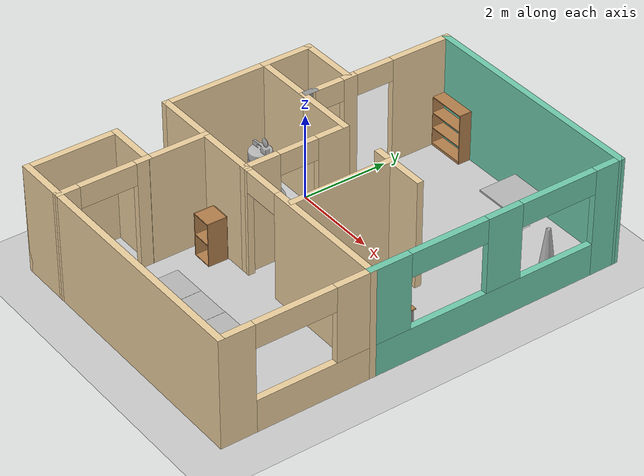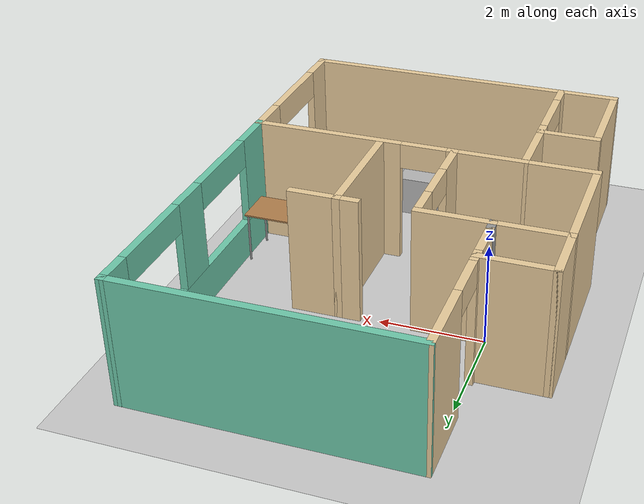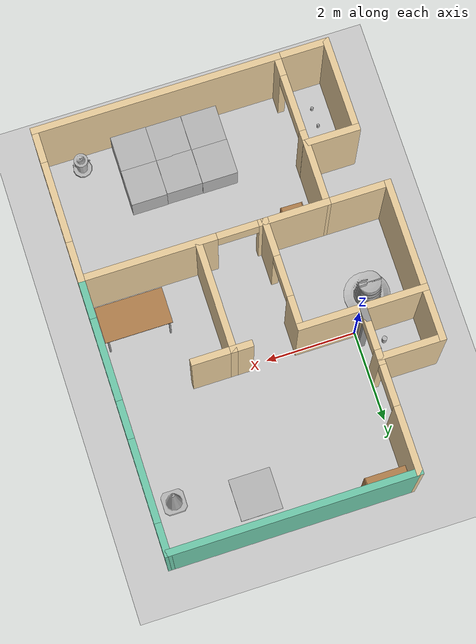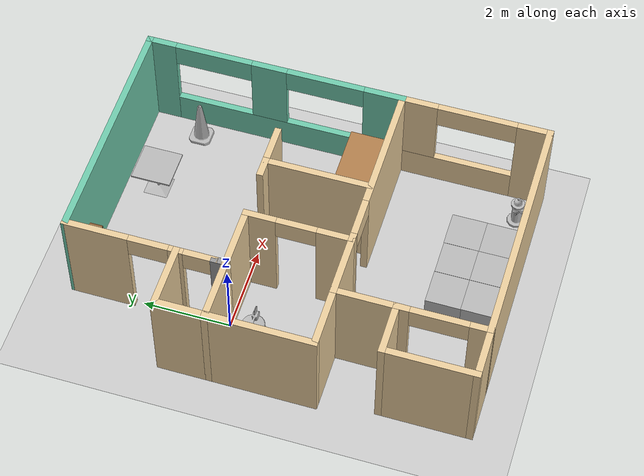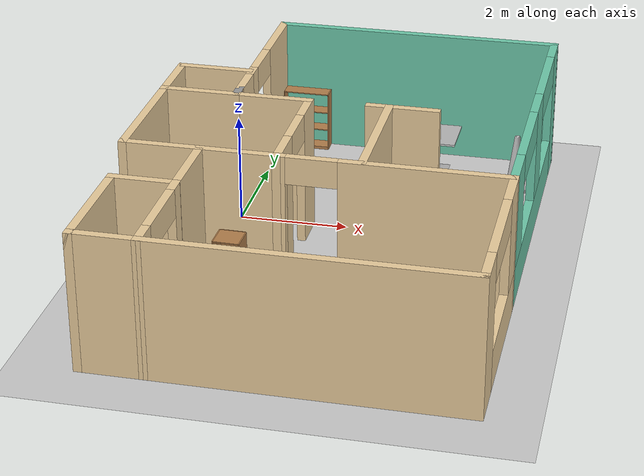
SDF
<sdf version="1.6">
 <world name="default">
  <plugin name="hello" filename="libhello.so"/>
  <light name="sun" type="directional">
   <pose>0 0 10 0 -0 0</pose>
   <diffuse>0.8 0.8 0.8 1</diffuse>
   <specular>0.2 0.2 0.2 1</specular>
   <attenuation>
    <range>1000</range>
    <constant>0.9</constant>
    <linear>0.01</linear>
    <quadratic>0.001</quadratic>
   </attenuation>
   <direction>-0.5 0.1 -0.9</direction>
  </light>
  <model name="ground_plane">
   <static>1</static>
   <link name="link">
    <collision name="collision">
     <geometry><plane><normal>0 0 1</normal><size>100 100</size></plane></geometry>
     <surface>
      <contact><collide_bitmask>65535</collide_bitmask></contact>
      <friction><ode><mu>100</mu><mu2>50</mu2></ode></friction>
     </surface>
    </collision>
    <visual name="visual">
     <cast_shadows>0</cast_shadows>
     <geometry><plane><normal>0 0 1</normal><size>100 100</size></plane></geometry>
     <material>
      <script><uri>file://media/materials/scripts/gazebo.material</uri><name>Gazebo/Grey</name></script>
     </material>
    </visual>
   </link>
  </model>
  <gravity>0 0 -9.8</gravity>
  <magnetic_field>6e-06 2.3e-05 -4.2e-05</magnetic_field>
  <atmosphere type="adiabatic"/>
  <physics name="default_physics" default="0" type="ode">
   <max_step_size>0.001</max_step_size>
   <real_time_factor>1</real_time_factor>
   <real_time_update_rate>1000</real_time_update_rate>
  </physics>
  <scene><ambient>0.4 0.4 0.4 1</ambient><background>0.7 0.7 0.7 1</background><shadows>1</shadows></scene>
  <audio><device>default</device></audio>
  <spherical_coordinates>
   <surface_model>EARTH_WGS84</surface_model>
   <latitude_deg>0</latitude_deg>
   <longitude_deg>0</longitude_deg>
   <elevation>0</elevation>
   <heading_deg>0</heading_deg>
  </spherical_coordinates>
  <model name="combined_model">
   <model name="apt_1br">
    <pose>0.440605 -1.37151 0 0 -0 0</pose>
    <link name="Wall_10">
     <collision name="Wall_10_Collision">
      <geometry><box><size>5.5 0.15 2.5</size></box></geometry>
      <pose>0 0 1.25 0 -0 0</pose>
     </collision>
     <visual name="Wall_10_Visual">
      <pose>0 0 1.25 0 -0 0</pose>
      <geometry><box><size>5.5 0.15 2.5</size></box></geometry>
      <material>
       <script><uri>file://media/materials/scripts/gazebo.material</uri><name>Gazebo/Grey</name></script>
       <ambient>0.921569 0.807843 0.615686 1</ambient>
      </material>
      <meta><layer>0</layer></meta>
     </visual>
     <pose>0.674919 -4.65002 0 0 -0 3.14159</pose>
    </link>
    <link name="Wall_21">
     <collision name="Wall_21_Collision">
      <geometry><box><size>1.5 0.15 2.5</size></box></geometry>
      <pose>0 0 1.25 0 -0 0</pose>
     </collision>
     <visual name="Wall_21_Visual">
      <pose>0 0 1.25 0 -0 0</pose>
      <geometry><box><size>1.5 0.15 2.5</size></box></geometry>
      <material>
       <script><uri>file://media/materials/scripts/gazebo.material</uri><name>Gazebo/Grey</name></script>
       <ambient>0.921569 0.807843 0.615686 1</ambient>
      </material>
      <meta><layer>0</layer></meta>
     </visual>
     <pose>-1.32508 1.04998 0 0 -0 3.14159</pose>
    </link>
    <link name="Wall_29">
     <pose>3.34992 1.67498 0 0 -0 -1.5708</pose>
     <visual name="Wall_29_Visual_0">
      <pose>-2.69448 0 1.25 0 -0 0</pose>
      <geometry><box><size>0.71105 0.15 2.5</size></box></geometry>
      <material>
       <script><uri>file://media/materials/scripts/gazebo.material</uri><name>Gazebo/Grey</name></script>
       <ambient>0.435294 0.796078 0.67451 1</ambient>
      </material>
      <meta><layer>0</layer></meta>
     </visual>
     <collision name="Wall_29_Collision_0">
      <geometry><box><size>0.71105 0.15 2.5</size></box></geometry>
      <pose>-2.69448 0 1.25 0 -0 0</pose>
     </collision>
     <visual name="Wall_29_Visual_1">
      <pose>0.355525 0 0.375 0 -0 0</pose>
      <geometry><box><size>5.38895 0.15 0.75</size></box></geometry>
      <material>
       <script><uri>file://media/materials/scripts/gazebo.material</uri><name>Gazebo/Grey</name></script>
       <ambient>0.435294 0.796078 0.67451 1</ambient>
      </material>
      <meta><layer>0</layer></meta>
     </visual>
     <collision name="Wall_29_Collision_1">
      <geometry><box><size>5.38895 0.15 0.75</size></box></geometry>
      <pose>0.355525 0 0.375 0 -0 0</pose>
     </collision>
     <visual name="Wall_29_Visual_2">
      <pose>-0.124805 0 1.625 0 -0 0</pose>
      <geometry><box><size>0.82829 0.15 1.75</size></box></geometry>
      <material>
       <script><uri>file://media/materials/scripts/gazebo.material</uri><name>Gazebo/Grey</name></script>
       <ambient>0.435294 0.796078 0.67451 1</ambient>
      </material>
      <meta><layer>0</layer></meta>
     </visual>
     <collision name="Wall_29_Collision_2">
      <geometry><box><size>0.82829 0.15 1.75</size></box></geometry>
      <pose>-0.124805 0 1.625 0 -0 0</pose>
     </collision>
     <visual name="Wall_29_Visual_3">
      <pose>2.56967 0 1.625 0 -0 0</pose>
      <geometry><box><size>0.96066 0.15 1.75</size></box></geometry>
      <material>
       <script><uri>file://media/materials/scripts/gazebo.material</uri><name>Gazebo/Grey</name></script>
       <ambient>0.435294 0.796078 0.67451 1</ambient>
      </material>
      <meta><layer>0</layer></meta>
     </visual>
     <collision name="Wall_29_Collision_3">
      <geometry><box><size>0.96066 0.15 1.75</size></box></geometry>
      <pose>2.56967 0 1.625 0 -0 0</pose>
     </collision>
     <visual name="Wall_29_Visual_4">
      <pose>-1.43895 0 2.225 0 -0 0</pose>
      <geometry><box><size>1.8 0.15 0.55</size></box></geometry>
      <material>
       <script><uri>file://media/materials/scripts/gazebo.material</uri><name>Gazebo/Grey</name></script>
       <ambient>0.435294 0.796078 0.67451 1</ambient>
      </material>
      <meta><layer>0</layer></meta>
     </visual>
     <collision name="Wall_29_Collision_4">
      <geometry><box><size>1.8 0.15 0.55</size></box></geometry>
      <pose>-1.43895 0 2.225 0 -0 0</pose>
     </collision>
     <visual name="Wall_29_Visual_5">
      <pose>1.18934 0 2.225 0 -0 0</pose>
      <geometry><box><size>1.8 0.15 0.55</size></box></geometry>
      <material>
       <script><uri>file://media/materials/scripts/gazebo.material</uri><name>Gazebo/Grey</name></script>
       <ambient>0.435294 0.796078 0.67451 1</ambient>
      </material>
      <meta><layer>0</layer></meta>
     </visual>
     <collision name="Wall_29_Collision_5">
      <geometry><box><size>1.8 0.15 0.55</size></box></geometry>
      <pose>1.18934 0 2.225 0 -0 0</pose>
     </collision>
    </link>
    <link name="Wall_31">
     <pose>3.34992 -2.97502 0 0 -0 1.5708</pose>
     <visual name="Wall_31_Visual_0">
      <pose>-1.34686 0 1.25 0 -0 0</pose>
      <geometry><box><size>0.806273 0.15 2.5</size></box></geometry>
      <material>
       <script><uri>file://media/materials/scripts/gazebo.material</uri><name>Gazebo/Grey</name></script>
       <ambient>0.921569 0.807843 0.615686 1</ambient>
      </material>
      <meta><layer>0</layer></meta>
     </visual>
     <collision name="Wall_31_Collision_0">
      <geometry><box><size>0.806273 0.15 2.5</size></box></geometry>
      <pose>-1.34686 0 1.25 0 -0 0</pose>
     </collision>
     <visual name="Wall_31_Visual_1">
      <pose>0.403136 0 0.375 0 -0 0</pose>
      <geometry><box><size>2.69373 0.15 0.75</size></box></geometry>
      <material>
       <script><uri>file://media/materials/scripts/gazebo.material</uri><name>Gazebo/Grey</name></script>
       <ambient>0.921569 0.807843 0.615686 1</ambient>
      </material>
      <meta><layer>0</layer></meta>
     </visual>
     <collision name="Wall_31_Collision_1">
      <geometry><box><size>2.69373 0.15 0.75</size></box></geometry>
      <pose>0.403136 0 0.375 0 -0 0</pose>
     </collision>
     <visual name="Wall_31_Visual_2">
      <pose>1.30314 0 1.625 0 -0 0</pose>
      <geometry><box><size>0.893727 0.15 1.75</size></box></geometry>
      <material>
       <script><uri>file://media/materials/scripts/gazebo.material</uri><name>Gazebo/Grey</name></script>
       <ambient>0.921569 0.807843 0.615686 1</ambient>
      </material>
      <meta><layer>0</layer></meta>
     </visual>
     <collision name="Wall_31_Collision_2">
      <geometry><box><size>0.893727 0.15 1.75</size></box></geometry>
      <pose>1.30314 0 1.625 0 -0 0</pose>
     </collision>
     <visual name="Wall_31_Visual_3">
      <pose>-0.043727 0 2.225 0 -0 0</pose>
      <geometry><box><size>1.8 0.15 0.55</size></box></geometry>
      <material>
       <script><uri>file://media/materials/scripts/gazebo.material</uri><name>Gazebo/Grey</name></script>
       <ambient>0.921569 0.807843 0.615686 1</ambient>
      </material>
      <meta><layer>0</layer></meta>
     </visual>
     <collision name="Wall_31_Collision_3">
      <geometry><box><size>1.8 0.15 0.55</size></box></geometry>
      <pose>-0.043727 0 2.225 0 -0 0</pose>
     </collision>
    </link>
    <link name="Wall_33">
     <pose>-0.650081 -0.125024 0 0 -0 -1.5708</pose>
     <visual name="Wall_33_Visual_0">
      <pose>-0.874194 0 1.25 0 -0 0</pose>
      <geometry><box><size>0.751611 0.15 2.5</size></box></geometry>
      <material>
       <script><uri>file://media/materials/scripts/gazebo.material</uri><name>Gazebo/Grey</name></script>
       <ambient>0.921569 0.807843 0.615686 1</ambient>
      </material>
      <meta><layer>0</layer></meta>
     </visual>
     <collision name="Wall_33_Collision_0">
      <geometry><box><size>0.751611 0.15 2.5</size></box></geometry>
      <pose>-0.874194 0 1.25 0 -0 0</pose>
     </collision>
     <visual name="Wall_33_Visual_1">
      <pose>0.825806 0 1.25 0 -0 0</pose>
      <geometry><box><size>0.848389 0.15 2.5</size></box></geometry>
      <material>
       <script><uri>file://media/materials/scripts/gazebo.material</uri><name>Gazebo/Grey</name></script>
       <ambient>0.921569 0.807843 0.615686 1</ambient>
      </material>
      <meta><layer>0</layer></meta>
     </visual>
     <collision name="Wall_33_Collision_1">
      <geometry><box><size>0.848389 0.15 2.5</size></box></geometry>
      <pose>0.825806 0 1.25 0 -0 0</pose>
     </collision>
     <visual name="Wall_33_Visual_2">
      <pose>-0.048389 0 2.25 0 -0 0</pose>
      <geometry><box><size>0.9 0.15 0.5</size></box></geometry>
      <material>
       <script><uri>file://media/materials/scripts/gazebo.material</uri><name>Gazebo/Grey</name></script>
       <ambient>0.921569 0.807843 0.615686 1</ambient>
      </material>
      <meta><layer>0</layer></meta>
     </visual>
     <collision name="Wall_33_Collision_2">
      <geometry><box><size>0.9 0.15 0.5</size></box></geometry>
      <pose>-0.048389 0 2.25 0 -0 0</pose>
     </collision>
    </link>
    <link name="Wall_34">
     <collision name="Wall_34_Collision">
      <geometry><box><size>1.5 0.15 2.5</size></box></geometry>
      <pose>0 0 1.25 0 -0 0</pose>
     </collision>
     <visual name="Wall_34_Visual">
      <pose>0 0 1.25 0 -0 0</pose>
      <geometry><box><size>1.5 0.15 2.5</size></box></geometry>
      <material>
       <script><uri>file://media/materials/scripts/gazebo.material</uri><name>Gazebo/Grey</name></script>
       <ambient>0.921569 0.807843 0.615686 1</ambient>
      </material>
      <meta><layer>0</layer></meta>
     </visual>
     <pose>-1.32508 -1.30002 0 0 -0 3.14159</pose>
    </link>
    <link name="Wall_36">
     <pose>1.34992 -1.30002 0 0 -0 0</pose>
     <visual name="Wall_36_Visual_0">
      <pose>-1.96133 0 1.25 0 -0 0</pose>
      <geometry><box><size>0.227341 0.15 2.5</size></box></geometry>
      <material>
       <script><uri>file://media/materials/scripts/gazebo.material</uri><name>Gazebo/Grey</name></script>
       <ambient>0.921569 0.807843 0.615686 1</ambient>
      </material>
      <meta><layer>0</layer></meta>
     </visual>
     <collision name="Wall_36_Collision_0">
      <geometry><box><size>0.227341 0.15 2.5</size></box></geometry>
      <pose>-1.96133 0 1.25 0 -0 0</pose>
     </collision>
     <visual name="Wall_36_Visual_1">
      <pose>0.56367 0 1.25 0 -0 0</pose>
      <geometry><box><size>3.02266 0.15 2.5</size></box></geometry>
      <material>
       <script><uri>file://media/materials/scripts/gazebo.material</uri><name>Gazebo/Grey</name></script>
       <ambient>0.921569 0.807843 0.615686 1</ambient>
      </material>
      <meta><layer>0</layer></meta>
     </visual>
     <collision name="Wall_36_Collision_1">
      <geometry><box><size>3.02266 0.15 2.5</size></box></geometry>
      <pose>0.56367 0 1.25 0 -0 0</pose>
     </collision>
     <visual name="Wall_36_Visual_2">
      <pose>-1.39766 0 2.25 0 -0 0</pose>
      <geometry><box><size>0.9 0.15 0.5</size></box></geometry>
      <material>
       <script><uri>file://media/materials/scripts/gazebo.material</uri><name>Gazebo/Grey</name></script>
       <ambient>0.921569 0.807843 0.615686 1</ambient>
      </material>
      <meta><layer>0</layer></meta>
     </visual>
     <collision name="Wall_36_Collision_2">
      <geometry><box><size>0.9 0.15 0.5</size></box></geometry>
      <pose>-1.39766 0 2.25 0 -0 0</pose>
     </collision>
    </link>
    <link name="Wall_38">
     <collision name="Wall_38_Collision">
      <geometry><box><size>2.5 0.15 2.5</size></box></geometry>
      <pose>0 0 1.25 0 -0 0</pose>
     </collision>
     <visual name="Wall_38_Visual">
      <pose>0 0 1.25 0 -0 0</pose>
      <geometry><box><size>2.5 0.15 2.5</size></box></geometry>
      <material>
       <script><uri>file://media/materials/scripts/gazebo.material</uri><name>Gazebo/Grey</name></script>
       <ambient>0.921569 0.807843 0.615686 1</ambient>
      </material>
      <meta><layer>0</layer></meta>
     </visual>
     <pose>0.806186 -0.096149 0 0 -0 1.5708</pose>
    </link>
    <link name="Wall_41">
     <collision name="Wall_41_Collision">
      <geometry><box><size>1 0.15 2.5</size></box></geometry>
      <pose>0 0 1.25 0 -0 0</pose>
     </collision>
     <visual name="Wall_41_Visual">
      <pose>0 0 1.25 0 -0 0</pose>
      <geometry><box><size>1 0.15 2.5</size></box></geometry>
      <material>
       <script><uri>file://media/materials/scripts/gazebo.material</uri><name>Gazebo/Grey</name></script>
       <ambient>0.921569 0.807843 0.615686 1</ambient>
      </material>
      <meta><layer>0</layer></meta>
     </visual>
     <pose>1.23119 1.07885 0 0 -0 0</pose>
    </link>
    <link name="Wall_43">
     <collision name="Wall_43_Collision">
      <geometry><box><size>0.5 0.15 2.5</size></box></geometry>
      <pose>0 0 1.25 0 -0 0</pose>
     </collision>
     <visual name="Wall_43_Visual">
      <pose>0 0 1.25 0 -0 0</pose>
      <geometry><box><size>0.5 0.15 2.5</size></box></geometry>
      <material>
       <script><uri>file://media/materials/scripts/gazebo.material</uri><name>Gazebo/Grey</name></script>
       <ambient>0.921569 0.807843 0.615686 1</ambient>
      </material>
      <meta><layer>0</layer></meta>
     </visual>
     <pose>0.631186 1.07885 0 0 -0 3.14159</pose>
    </link>
    <link name="Wall_5">
     <pose>-2.00008 2.96898 0 0 -0 1.5708</pose>
     <visual name="Wall_5_Visual_0">
      <pose>-1.71167 0 1.25 0 -0 0</pose>
      <geometry><box><size>0.064664 0.15 2.5</size></box></geometry>
      <material>
       <script><uri>file://media/materials/scripts/gazebo.material</uri><name>Gazebo/Grey</name></script>
       <ambient>0.921569 0.807843 0.615686 1</ambient>
      </material>
      <meta><layer>0</layer></meta>
     </visual>
     <collision name="Wall_5_Collision_0">
      <geometry><box><size>0.064664 0.15 2.5</size></box></geometry>
      <pose>-1.71167 0 1.25 0 -0 0</pose>
     </collision>
     <visual name="Wall_5_Visual_1">
      <pose>-0.81386 0 1.25 0 -0 0</pose>
      <geometry><box><size>0.330951 0.15 2.5</size></box></geometry>
      <material>
       <script><uri>file://media/materials/scripts/gazebo.material</uri><name>Gazebo/Grey</name></script>
       <ambient>0.921569 0.807843 0.615686 1</ambient>
      </material>
      <meta><layer>0</layer></meta>
     </visual>
     <collision name="Wall_5_Collision_1">
      <geometry><box><size>0.330951 0.15 2.5</size></box></geometry>
      <pose>-0.81386 0 1.25 0 -0 0</pose>
     </collision>
     <visual name="Wall_5_Visual_2">
      <pose>0.997808 0 1.25 0 -0 0</pose>
      <geometry><box><size>1.49239 0.15 2.5</size></box></geometry>
      <material>
       <script><uri>file://media/materials/scripts/gazebo.material</uri><name>Gazebo/Grey</name></script>
       <ambient>0.921569 0.807843 0.615686 1</ambient>
      </material>
      <meta><layer>0</layer></meta>
     </visual>
     <collision name="Wall_5_Collision_2">
      <geometry><box><size>1.49239 0.15 2.5</size></box></geometry>
      <pose>0.997808 0 1.25 0 -0 0</pose>
     </collision>
     <visual name="Wall_5_Visual_3">
      <pose>-1.32934 0 2.25 0 -0 0</pose>
      <geometry><box><size>0.7 0.15 0.5</size></box></geometry>
      <material>
       <script><uri>file://media/materials/scripts/gazebo.material</uri><name>Gazebo/Grey</name></script>
       <ambient>0.921569 0.807843 0.615686 1</ambient>
      </material>
      <meta><layer>0</layer></meta>
     </visual>
     <collision name="Wall_5_Collision_3">
      <geometry><box><size>0.7 0.15 0.5</size></box></geometry>
      <pose>-1.32934 0 2.25 0 -0 0</pose>
     </collision>
     <visual name="Wall_5_Visual_4">
      <pose>-0.198385 0 2.25 0 -0 0</pose>
      <geometry><box><size>0.9 0.15 0.5</size></box></geometry>
      <material>
       <script><uri>file://media/materials/scripts/gazebo.material</uri><name>Gazebo/Grey</name></script>
       <ambient>0.921569 0.807843 0.615686 1</ambient>
      </material>
      <meta><layer>0</layer></meta>
     </visual>
     <collision name="Wall_5_Collision_4">
      <geometry><box><size>0.9 0.15 0.5</size></box></geometry>
      <pose>-0.198385 0 2.25 0 -0 0</pose>
     </collision>
    </link>
    <link name="Wall_54">
     <collision name="Wall_54_Collision">
      <geometry><box><size>1.5 0.15 2.5</size></box></geometry>
      <pose>0 0 1.25 0 -0 0</pose>
     </collision>
     <visual name="Wall_54_Visual">
      <pose>0 0 1.25 0 -0 0</pose>
      <geometry><box><size>1.5 0.15 2.5</size></box></geometry>
      <material>
       <script><uri>file://media/materials/scripts/gazebo.material</uri><name>Gazebo/Grey</name></script>
       <ambient>0.921569 0.807843 0.615686 1</ambient>
      </material>
      <meta><layer>0</layer></meta>
     </visual>
     <pose>-2.67508 1.04998 0 0 -0 3.14159</pose>
    </link>
    <link name="Wall_55">
     <collision name="Wall_55_Collision">
      <geometry><box><size>2.5 0.15 2.5</size></box></geometry>
      <pose>0 0 1.25 0 -0 0</pose>
     </collision>
     <visual name="Wall_55_Visual">
      <pose>0 0 1.25 0 -0 0</pose>
      <geometry><box><size>2.5 0.15 2.5</size></box></geometry>
      <material>
       <script><uri>file://media/materials/scripts/gazebo.material</uri><name>Gazebo/Grey</name></script>
       <ambient>0.921569 0.807843 0.615686 1</ambient>
      </material>
      <meta><layer>0</layer></meta>
     </visual>
     <pose>-3.35008 -0.125024 0 0 -0 -1.5708</pose>
    </link>
    <link name="Wall_56">
     <collision name="Wall_56_Collision">
      <geometry><box><size>1.5 0.15 2.5</size></box></geometry>
      <pose>0 0 1.25 0 -0 0</pose>
     </collision>
     <visual name="Wall_56_Visual">
      <pose>0 0 1.25 0 -0 0</pose>
      <geometry><box><size>1.5 0.15 2.5</size></box></geometry>
      <material>
       <script><uri>file://media/materials/scripts/gazebo.material</uri><name>Gazebo/Grey</name></script>
       <ambient>0.921569 0.807843 0.615686 1</ambient>
      </material>
      <meta><layer>0</layer></meta>
     </visual>
     <pose>-2.67508 -1.30002 0 0 -0 0</pose>
    </link>
    <link name="Wall_57">
     <collision name="Wall_57_Collision">
      <geometry><box><size>1.5 0.15 2.5</size></box></geometry>
      <pose>0 0 1.25 0 -0 0</pose>
     </collision>
     <visual name="Wall_57_Visual">
      <pose>0 0 1.25 0 -0 0</pose>
      <geometry><box><size>1.5 0.15 2.5</size></box></geometry>
      <material>
       <script><uri>file://media/materials/scripts/gazebo.material</uri><name>Gazebo/Grey</name></script>
       <ambient>0.921569 0.807843 0.615686 1</ambient>
      </material>
      <meta><layer>0</layer></meta>
     </visual>
     <pose>-2.0017 -1.97502 0 0 -0 -1.57319</pose>
    </link>
    <link name="Wall_58">
     <collision name="Wall_58_Collision">
      <geometry><box><size>1.247 0.15 2.5</size></box></geometry>
      <pose>0 0 1.25 0 -0 0</pose>
     </collision>
     <visual name="Wall_58_Visual">
      <pose>0 0 1.25 0 -0 0</pose>
      <geometry><box><size>1.247 0.15 2.5</size></box></geometry>
      <material>
       <script><uri>file://media/materials/scripts/gazebo.material</uri><name>Gazebo/Grey</name></script>
       <ambient>0.921569 0.807843 0.615686 1</ambient>
      </material>
      <meta><layer>0</layer></meta>
     </visual>
     <pose>-2.55181 -2.65002 0 0 -0 3.14159</pose>
    </link>
    <link name="Wall_6">
     <collision name="Wall_6_Collision">
      <geometry><box><size>5.5 0.15 2.5</size></box></geometry>
      <pose>0 0 1.25 0 -0 0</pose>
     </collision>
     <visual name="Wall_6_Visual">
      <pose>0 0 1.25 0 -0 0</pose>
      <geometry><box><size>5.5 0.15 2.5</size></box></geometry>
      <material>
       <script><uri>file://media/materials/scripts/gazebo.material</uri><name>Gazebo/Grey</name></script>
       <ambient>0.435294 0.796078 0.67451 1</ambient>
      </material>
      <meta><layer>0</layer></meta>
     </visual>
     <pose>0.674919 4.64398 0 0 -0 0.002243</pose>
    </link>
    <link name="Wall_62">
     <collision name="Wall_62_Collision">
      <geometry><box><size>1.25 0.15 2.5</size></box></geometry>
      <pose>0 0 1.25 0 -0 0</pose>
     </collision>
     <visual name="Wall_62_Visual">
      <pose>0 0 1.25 0 -0 0</pose>
      <geometry><box><size>1.25 0.15 2.5</size></box></geometry>
      <material>
       <script><uri>file://media/materials/scripts/gazebo.material</uri><name>Gazebo/Grey</name></script>
       <ambient>0.921569 0.807843 0.615686 1</ambient>
      </material>
      <meta><layer>0</layer></meta>
     </visual>
     <pose>-2.55008 -4.65002 0 0 -0 3.14159</pose>
    </link>
    <link name="Wall_63">
     <collision name="Wall_63_Collision">
      <geometry><box><size>2 0.15 2.5</size></box></geometry>
      <pose>0 0 1.25 0 -0 0</pose>
     </collision>
     <visual name="Wall_63_Visual">
      <pose>0 0 1.25 0 -0 0</pose>
      <geometry><box><size>2 0.15 2.5</size></box></geometry>
      <material>
       <script><uri>file://media/materials/scripts/gazebo.material</uri><name>Gazebo/Grey</name></script>
       <ambient>0.921569 0.807843 0.615686 1</ambient>
      </material>
      <meta><layer>0</layer></meta>
     </visual>
     <pose>-3.10008 -3.72502 0 0 -0 1.5708</pose>
    </link>
    <link name="Wall_65">
     <pose>-2.0017 -3.65002 0 0 -0 -1.56918</pose>
     <visual name="Wall_65_Visual_0">
      <pose>-0.895757 0 1.25 0 -0 0</pose>
      <geometry><box><size>0.358489 0.15 2.5</size></box></geometry>
      <material>
       <script><uri>file://media/materials/scripts/gazebo.material</uri><name>Gazebo/Grey</name></script>
       <ambient>0.921569 0.807843 0.615686 1</ambient>
      </material>
      <meta><layer>0</layer></meta>
     </visual>
     <collision name="Wall_65_Collision_0">
      <geometry><box><size>0.358489 0.15 2.5</size></box></geometry>
      <pose>-0.895757 0 1.25 0 -0 0</pose>
     </collision>
     <visual name="Wall_65_Visual_1">
      <pose>0.815925 0 1.25 0 -0 0</pose>
      <geometry><box><size>0.518152 0.15 2.5</size></box></geometry>
      <material>
       <script><uri>file://media/materials/scripts/gazebo.material</uri><name>Gazebo/Grey</name></script>
       <ambient>0.921569 0.807843 0.615686 1</ambient>
      </material>
      <meta><layer>0</layer></meta>
     </visual>
     <collision name="Wall_65_Collision_1">
      <geometry><box><size>0.518152 0.15 2.5</size></box></geometry>
      <pose>0.815925 0 1.25 0 -0 0</pose>
     </collision>
     <visual name="Wall_65_Visual_2">
      <pose>-0.079832 0 2.25 0 -0 0</pose>
      <geometry><box><size>1.27336 0.15 0.5</size></box></geometry>
      <material>
       <script><uri>file://media/materials/scripts/gazebo.material</uri><name>Gazebo/Grey</name></script>
       <ambient>0.921569 0.807843 0.615686 1</ambient>
      </material>
      <meta><layer>0</layer></meta>
     </visual>
     <collision name="Wall_65_Collision_2">
      <geometry><box><size>1.27336 0.15 0.5</size></box></geometry>
      <pose>-0.079832 0 2.25 0 -0 0</pose>
     </collision>
    </link>
    <link name="Wall_70">
     <collision name="Wall_70_Collision">
      <geometry><box><size>1.25 0.15 2.5</size></box></geometry>
      <pose>0 0 1.25 0 -0 0</pose>
     </collision>
     <visual name="Wall_70_Visual">
      <pose>0 0 1.25 0 -0 0</pose>
      <geometry><box><size>1.25 0.15 2.5</size></box></geometry>
      <material>
       <script><uri>file://media/materials/scripts/gazebo.material</uri><name>Gazebo/Grey</name></script>
       <ambient>0.921569 0.807843 0.615686 1</ambient>
      </material>
      <meta><layer>0</layer></meta>
     </visual>
     <pose>-3.35008 1.59998 0 0 -0 1.5708</pose>
    </link>
    <link name="Wall_71">
     <collision name="Wall_71_Collision">
      <geometry><box><size>1.5 0.15 2.5</size></box></geometry>
      <pose>0 0 1.25 0 -0 0</pose>
     </collision>
     <visual name="Wall_71_Visual">
      <pose>0 0 1.25 0 -0 0</pose>
      <geometry><box><size>1.5 0.15 2.5</size></box></geometry>
      <material>
       <script><uri>file://media/materials/scripts/gazebo.material</uri><name>Gazebo/Grey</name></script>
       <ambient>0.921569 0.807843 0.615686 1</ambient>
      </material>
      <meta><layer>0</layer></meta>
     </visual>
     <pose>-2.67508 2.14998 0 0 -0 0</pose>
    </link>
    <link name="Wall_73">
     <collision name="Wall_73_Collision">
      <geometry><box><size>0.4 0.15 2.5</size></box></geometry>
      <pose>0 0 1.25 0 -0 0</pose>
     </collision>
     <visual name="Wall_73_Visual">
      <pose>0 0 1.25 0 -0 0</pose>
      <geometry><box><size>0.4 0.15 2.5</size></box></geometry>
      <material>
       <script><uri>file://media/materials/scripts/gazebo.material</uri><name>Gazebo/Grey</name></script>
       <ambient>1 1 1 1</ambient>
      </material>
      <meta><layer>0</layer></meta>
     </visual>
     <pose>-2.00008 1.17498 0 0 -0 1.5708</pose>
    </link>
    <static>1</static>
   </model>
   <model name="bookshelf">
    <static>1</static>
    <link name="link">
     <inertial><mass>1</mass></inertial>
     <collision name="back">
      <pose>0 0.005 0.6 0 -0 0</pose>
      <geometry><box><size>0.9 0.01 1.2</size></box></geometry>
     </collision>
     <visual name="visual1">
      <pose>0 0.005 0.6 0 -0 0</pose>
      <geometry><box><size>0.9 0.01 1.2</size></box></geometry>
      <material>
       <script><uri>file://media/materials/scripts/gazebo.material</uri><name>Gazebo/Wood</name></script>
      </material>
     </visual>
     <collision name="left_side">
      <pose>0.45 -0.195 0.6 0 -0 0</pose>
      <geometry><box><size>0.02 0.4 1.2</size></box></geometry>
     </collision>
     <visual name="visual2">
      <pose>0.45 -0.195 0.6 0 -0 0</pose>
      <geometry><box><size>0.02 0.4 1.2</size></box></geometry>
      <material>
       <script><uri>file://media/materials/scripts/gazebo.material</uri><name>Gazebo/Wood</name></script>
      </material>
     </visual>
     <collision name="right_side">
      <pose>-0.45 -0.195 0.6 0 -0 0</pose>
      <geometry><box><size>0.02 0.4 1.2</size></box></geometry>
     </collision>
     <visual name="visual3">
      <pose>-0.45 -0.195 0.6 0 -0 0</pose>
      <geometry><box><size>0.02 0.4 1.2</size></box></geometry>
      <material>
       <script><uri>file://media/materials/scripts/gazebo.material</uri><name>Gazebo/Wood</name></script>
      </material>
     </visual>
     <collision name="bottom">
      <pose>0 -0.195 0.03 0 -0 0</pose>
      <geometry><box><size>0.88 0.4 0.06</size></box></geometry>
     </collision>
     <visual name="visual4">
      <pose>0 -0.195 0.03 0 -0 0</pose>
      <geometry><box><size>0.88 0.4 0.06</size></box></geometry>
      <material>
       <script><uri>file://media/materials/scripts/gazebo.material</uri><name>Gazebo/Wood</name></script>
      </material>
     </visual>
     <collision name="top">
      <pose>0 -0.195 1.19 0 -0 0</pose>
      <geometry><box><size>0.88 0.4 0.02</size></box></geometry>
     </collision>
     <visual name="visual5">
      <pose>0 -0.195 1.19 0 -0 0</pose>
      <geometry><box><size>0.88 0.4 0.02</size></box></geometry>
      <material>
       <script><uri>file://media/materials/scripts/gazebo.material</uri><name>Gazebo/Wood</name></script>
      </material>
     </visual>
     <collision name="low_shelf">
      <pose>0 -0.195 0.43 0 -0 0</pose>
      <geometry><box><size>0.88 0.4 0.02</size></box></geometry>
     </collision>
     <visual name="visual6">
      <pose>0 -0.195 0.43 0 -0 0</pose>
      <geometry><box><size>0.88 0.4 0.02</size></box></geometry>
      <material>
       <script><uri>file://media/materials/scripts/gazebo.material</uri><name>Gazebo/Wood</name></script>
      </material>
     </visual>
     <collision name="high_shelf">
      <pose>0 -0.195 0.8 0 -0 0</pose>
      <geometry><box><size>0.88 0.4 0.02</size></box></geometry>
     </collision>
     <visual name="visual7">
      <pose>0 -0.195 0.8 0 -0 0</pose>
      <geometry><box><size>0.88 0.4 0.02</size></box></geometry>
      <material>
       <script><uri>file://media/materials/scripts/gazebo.material</uri><name>Gazebo/Wood</name></script>
      </material>
     </visual>
    </link>
    <pose>-1.04171 3.29108 0 0 -0 0</pose>
   </model>
   <model name="cabinet">
    <static>1</static>
    <link name="cabinet_bottom_plate">
     <inertial>
      <pose>0 0 -1 0 -0 0</pose>
      <inertia><ixx>2.05</ixx><ixy>0</ixy><ixz>0</ixz><iyy>2.05</iyy><iyz>0</iyz><izz>2.05</izz></inertia>
      <mass>25</mass>
     </inertial>
     <collision name="cabinet_bottom_plate_geom">
      <pose>0 0 0.01 0 -0 0</pose>
      <geometry><box><size>0.45 0.45 0.02</size></box></geometry>
     </collision>
     <visual name="cabinet_bottom_plate_geom_visual">
      <pose>0 0 0.01 0 -0 0</pose>
      <geometry><box><size>0.45 0.45 0.02</size></box></geometry>
      <material>
       <script><uri>file://media/materials/scripts/gazebo.material</uri><name>Gazebo/Wood</name></script>
      </material>
     </visual>
     <collision name="cabinet_bottom_plate_geom_cabinet_back_plate">
      <pose>0.235 0 0.51 0 -0 0</pose>
      <geometry><box><size>0.02 0.45 1.02</size></box></geometry>
     </collision>
     <visual name="cabinet_bottom_plate_geom_cabinet_back_plate_visual">
      <pose>0.235 0 0.51 0 -0 0</pose>
      <geometry><box><size>0.02 0.45 1.02</size></box></geometry>
      <material>
       <script><uri>file://media/materials/scripts/gazebo.material</uri><name>Gazebo/Wood</name></script>
      </material>
     </visual>
     <collision name="cabinet_bottom_plate_geom_cabinet_left_plate">
      <pose>0 0.235 0.51 0 -0 0</pose>
      <geometry><box><size>0.45 0.02 1.02</size></box></geometry>
     </collision>
     <visual name="cabinet_bottom_plate_geom_cabinet_left_plate_visual">
      <pose>0 0.235 0.51 0 -0 0</pose>
      <geometry><box><size>0.45 0.02 1.02</size></box></geometry>
      <material>
       <script><uri>file://media/materials/scripts/gazebo.material</uri><name>Gazebo/Wood</name></script>
      </material>
     </visual>
     <collision name="cabinet_bottom_plate_geom_cabinet_middle_plate">
      <pose>0 0 0.51 0 -0 0</pose>
      <geometry><box><size>0.45 0.45 0.02</size></box></geometry>
     </collision>
     <visual name="cabinet_bottom_plate_geom_cabinet_middle_plate_visual">
      <pose>0 0 0.51 0 -0 0</pose>
      <geometry><box><size>0.45 0.45 0.02</size></box></geometry>
      <material>
       <script><uri>file://media/materials/scripts/gazebo.material</uri><name>Gazebo/Wood</name></script>
      </material>
     </visual>
     <collision name="cabinet_bottom_plate_geom_cabinet_right_plate">
      <pose>0 -0.235 0.51 0 -0 0</pose>
      <geometry><box><size>0.45 0.02 1.02</size></box></geometry>
     </collision>
     <visual name="cabinet_bottom_plate_geom_cabinet_right_plate_visual">
      <pose>0 -0.235 0.51 0 -0 0</pose>
      <geometry><box><size>0.45 0.02 1.02</size></box></geometry>
      <material>
       <script><uri>file://media/materials/scripts/gazebo.material</uri><name>Gazebo/Wood</name></script>
      </material>
     </visual>
     <collision name="cabinet_bottom_plate_geom_cabinet_top_plate">
      <pose>0 0 1.01 0 -0 0</pose>
      <geometry><box><size>0.45 0.45 0.02</size></box></geometry>
     </collision>
     <visual name="cabinet_bottom_plate_geom_cabinet_top_plate_visual">
      <pose>0 0 1.01 0 -0 0</pose>
      <geometry><box><size>0.45 0.45 0.02</size></box></geometry>
      <material>
       <script><uri>file://media/materials/scripts/gazebo.material</uri><name>Gazebo/Wood</name></script>
      </material>
     </visual>
    </link>
    <pose>-0.989306 -2.99197 0 0 -0 1.55199</pose>
   </model>
   <model name="cafe_table">
    <static>1</static>
    <link name="link">
     <collision name="surface">
      <pose>0 0 0.755 0 -0 0</pose>
      <geometry><box><size>0.913 0.913 0.04</size></box></geometry>
     </collision>
     <collision name="column">
      <pose>0 0 0.37 0 -0 0</pose>
      <geometry><box><size>0.042 0.042 0.74</size></box></geometry>
     </collision>
     <collision name="base">
      <pose>0 0 0.02 0 -0 0</pose>
      <geometry><box><size>0.56 0.56 0.04</size></box></geometry>
     </collision>
     <visual name="visual">
      <geometry><mesh><uri>model://cafe_table/meshes/cafe_table.dae</uri></mesh></geometry>
     </visual>
    </link>
    <pose>1.64758 2.46156 0 0 -0 0</pose>
   </model>
   <static>0</static>
   <pose>1.51647 0.3219 0 0 -0 0</pose>
  </model>
  <model name="table">
   <static>1</static>
   <link name="link">
    <collision name="surface">
     <pose>0 0 1 0 -0 0</pose>
     <geometry><box><size>1.5 0.8 0.03</size></box></geometry>
     <surface><friction><ode><mu>0.6</mu><mu2>0.6</mu2></ode></friction></surface>
    </collision>
    <visual name="visual1">
     <pose>0 0 1 0 -0 0</pose>
     <geometry><box><size>1.5 0.8 0.03</size></box></geometry>
     <material>
      <script><uri>file://media/materials/scripts/gazebo.material</uri><name>Gazebo/Wood</name></script>
     </material>
    </visual>
    <collision name="front_left_leg">
     <pose>0.68 0.38 0.5 0 -0 0</pose>
     <geometry><cylinder><radius>0.02</radius><length>1</length></cylinder></geometry>
    </collision>
    <visual name="front_left_leg">
     <pose>0.68 0.38 0.5 0 -0 0</pose>
     <geometry><cylinder><radius>0.02</radius><length>1</length></cylinder></geometry>
     <material>
      <script><uri>file://media/materials/scripts/gazebo.material</uri><name>Gazebo/Grey</name></script>
     </material>
    </visual>
    <collision name="front_right_leg">
     <pose>0.68 -0.38 0.5 0 -0 0</pose>
     <geometry><cylinder><radius>0.02</radius><length>1</length></cylinder></geometry>
    </collision>
    <visual name="front_right_leg">
     <pose>0.68 -0.38 0.5 0 -0 0</pose>
     <geometry><cylinder><radius>0.02</radius><length>1</length></cylinder></geometry>
     <material>
      <script><uri>file://media/materials/scripts/gazebo.material</uri><name>Gazebo/Grey</name></script>
     </material>
    </visual>
    <collision name="back_right_leg">
     <pose>-0.68 -0.38 0.5 0 -0 0</pose>
     <geometry><cylinder><radius>0.02</radius><length>1</length></cylinder></geometry>
    </collision>
    <visual name="back_right_leg">
     <pose>-0.68 -0.38 0.5 0 -0 0</pose>
     <geometry><cylinder><radius>0.02</radius><length>1</length></cylinder></geometry>
     <material>
      <script><uri>file://media/materials/scripts/gazebo.material</uri><name>Gazebo/Grey</name></script>
     </material>
    </visual>
    <collision name="back_left_leg">
     <pose>-0.68 0.38 0.5 0 -0 0</pose>
     <geometry><cylinder><radius>0.02</radius><length>1</length></cylinder></geometry>
    </collision>
    <visual name="back_left_leg">
     <pose>-0.68 0.38 0.5 0 -0 0</pose>
     <geometry><cylinder><radius>0.02</radius><length>1</length></cylinder></geometry>
     <material>
      <script><uri>file://media/materials/scripts/gazebo.material</uri><name>Gazebo/Grey</name></script>
     </material>
    </visual>
   </link>
   <pose>4.4616 -1.61574 0 0 -0 0</pose>
  </model>
  <model name="Construction Cone">
   <link name="link">
    <collision name="collision">
     <geometry>
      <mesh><scale>10 10 10</scale><uri>model://construction_cone/meshes/construction_cone.dae</uri></mesh>
     </geometry>
    </collision>
    <visual name="visual">
     <geometry>
      <mesh><scale>10 10 10</scale><uri>model://construction_cone/meshes/construction_cone.dae</uri></mesh>
     </geometry>
    </visual>
    <inertial>
     <inertia><ixx>1</ixx><ixy>0</ixy><ixz>0</ixz><iyy>1</iyy><iyz>0</iyz><izz>1</izz></inertia>
     <mass>1</mass>
    </inertial>
   </link>
   <pose>4.82924 2.31813 0 0 -0 0</pose>
  </model>
  <model name="Construction Barrel">
   <link name="link">
    <inertial>
     <pose>0 0 0.4 0 -0 0</pose>
     <mass>500</mass>
     <inertia><ixx>51.2096</ixx><iyy>51.2096</iyy><izz>25</izz><ixy>0</ixy><ixz>0</ixz><iyz>0</iyz></inertia>
    </inertial>
    <collision name="collision">
     <geometry><mesh><uri>model://construction_barrel/meshes/construction_barrel.dae</uri></mesh></geometry>
    </collision>
    <visual name="visual">
     <geometry><mesh><uri>model://construction_barrel/meshes/construction_barrel.dae</uri></mesh></geometry>
    </visual>
   </link>
   <pose>-0.528386 -0.731933 0 0 -0 0</pose>
  </model>
  <model name="number1">
   <pose>1.76878 -5.19522 0.4 0 -0 0</pose>
   <static>1</static>
   <link name="link">
    <visual name="visual">
     <geometry><mesh><uri>model://number1/meshes/number.dae</uri></mesh></geometry>
     <material>
      <script>
       <uri>model://number1/materials/scripts</uri>
       <uri>model://number1/materials/textures</uri>
       <name>Number/One</name>
      </script>
     </material>
    </visual>
   </link>
  </model>
  <model name="number2">
   <pose>1.76702 -4.40164 0.4 0 -0 0</pose>
   <static>1</static>
   <link name="link">
    <visual name="visual">
     <geometry><mesh><uri>model://number1/meshes/number.dae</uri></mesh></geometry>
     <material>
      <script>
       <uri>model://number2/materials/scripts</uri>
       <uri>model://number2/materials/textures</uri>
       <name>Number/Two</name>
      </script>
     </material>
    </visual>
   </link>
  </model>
  <model name="number3">
   <pose>2.57185 -5.1922 0.4 0 -0 0</pose>
   <static>1</static>
   <link name="link">
    <visual name="visual">
     <geometry><mesh><uri>model://number1/meshes/number.dae</uri></mesh></geometry>
     <material>
      <script>
       <uri>model://number3/materials/scripts</uri>
       <uri>model://number3/materials/textures</uri>
       <name>Number/Three</name>
      </script>
     </material>
    </visual>
   </link>
  </model>
  <model name="number4">
   <pose>2.57011 -4.40517 0.4 0 -0 0</pose>
   <static>1</static>
   <link name="link">
    <visual name="visual">
     <geometry><mesh><uri>model://number1/meshes/number.dae</uri></mesh></geometry>
     <material>
      <script>
       <uri>model://number4/materials/scripts</uri>
       <uri>model://number4/materials/textures</uri>
       <name>Number/Four</name>
      </script>
     </material>
    </visual>
   </link>
  </model>
  <model name="number5">
   <pose>3.36927 -5.19621 0.4 0 -0 0</pose>
   <static>1</static>
   <link name="link">
    <visual name="visual">
     <geometry><mesh><uri>model://number1/meshes/number.dae</uri></mesh></geometry>
     <material>
      <script>
       <uri>model://number5/materials/scripts</uri>
       <uri>model://number5/materials/textures</uri>
       <name>Number/Five</name>
      </script>
     </material>
    </visual>
   </link>
  </model>
  <model name="number6">
   <pose>3.37186 -4.39778 0.4 0 -0 0</pose>
   <static>1</static>
   <link name="link">
    <visual name="visual">
     <geometry><mesh><uri>model://number1/meshes/number.dae</uri></mesh></geometry>
     <material>
      <script>
       <uri>model://number6/materials/scripts</uri>
       <uri>model://number6/materials/textures</uri>
       <name>Number/Six</name>
      </script>
     </material>
    </visual>
   </link>
  </model>
  <model name="fire_hydrant">
   <static>1</static>
   <link name="link">
    <collision name="collision">
     <geometry><mesh><uri>model://fire_hydrant/meshes/fire_hydrant.dae</uri></mesh></geometry>
    </collision>
    <visual name="visual">
     <geometry><mesh><uri>model://fire_hydrant/meshes/fire_hydrant.dae</uri></mesh></geometry>
    </visual>
   </link>
   <pose>4.52435 -5.31706 0 0 -0 0</pose>
  </model>
  <model name="coke_can">
   <link name="link">
    <inertial>
     <pose>0 0 0.06 0 -0 0</pose>
     <mass>0.39</mass>
     <inertia>
      <ixx>0.00055575</ixx>
      <ixy>0</ixy>
      <ixz>0</ixz>
      <iyy>0.00055575</iyy>
      <iyz>0</iyz>
      <izz>0.0001755</izz>
     </inertia>
    </inertial>
    <collision name="collision">
     <pose>0.003937 0.004724 -0.18 0 -0 0</pose>
     <geometry><mesh><uri>model://coke_can/meshes/coke_can.dae</uri></mesh></geometry>
     <surface>
      <friction><ode><mu>1</mu><mu2>1</mu2></ode></friction>
      <contact><ode><kp>1e+07</kp><kd>1</kd><min_depth>0.001</min_depth><max_vel>0.1</max_vel></ode></contact>
     </surface>
    </collision>
    <visual name="visual">
     <pose>0.003937 0.004724 -0.18 0 -0 0</pose>
     <geometry><mesh><uri>model://coke_can/meshes/coke_can.dae</uri></mesh></geometry>
    </visual>
   </link>
   <pose>-0.710492 -5.1006 0 0 -0 0</pose>
  </model>
  <model name="coke_can_0">
   <link name="link">
    <inertial>
     <pose>0 0 0.06 0 -0 0</pose>
     <mass>0.39</mass>
     <inertia>
      <ixx>0.00055575</ixx>
      <ixy>0</ixy>
      <ixz>0</ixz>
      <iyy>0.00055575</iyy>
      <iyz>0</iyz>
      <izz>0.0001755</izz>
     </inertia>
    </inertial>
    <collision name="collision">
     <pose>0.003937 0.004724 -0.18 0 -0 0</pose>
     <geometry><mesh><uri>model://coke_can/meshes/coke_can.dae</uri></mesh></geometry>
     <surface>
      <friction><ode><mu>1</mu><mu2>1</mu2></ode></friction>
      <contact><ode><kp>1e+07</kp><kd>1</kd><min_depth>0.001</min_depth><max_vel>0.1</max_vel></ode></contact>
     </surface>
    </collision>
    <visual name="visual">
     <pose>0.003937 0.004724 -0.18 0 -0 0</pose>
     <geometry><mesh><uri>model://coke_can/meshes/coke_can.dae</uri></mesh></geometry>
    </visual>
   </link>
   <pose>-0.716537 -4.68494 0 0 -0 0</pose>
  </model>
  <model name="coke_can_1">
   <link name="link">
    <inertial>
     <pose>0 0 0.06 0 -0 0</pose>
     <mass>0.39</mass>
     <inertia>
      <ixx>0.00055575</ixx>
      <ixy>0</ixy>
      <ixz>0</ixz>
      <iyy>0.00055575</iyy>
      <iyz>0</iyz>
      <izz>0.0001755</izz>
     </inertia>
    </inertial>
    <collision name="collision">
     <pose>0.003937 0.004724 -0.18 0 -0 0</pose>
     <geometry><mesh><uri>model://coke_can/meshes/coke_can.dae</uri></mesh></geometry>
     <surface>
      <friction><ode><mu>1</mu><mu2>1</mu2></ode></friction>
      <contact><ode><kp>1e+07</kp><kd>1</kd><min_depth>0.001</min_depth><max_vel>0.1</max_vel></ode></contact>
     </surface>
    </collision>
    <visual name="visual">
     <pose>0.003937 0.004724 -0.18 0 -0 0</pose>
     <geometry><mesh><uri>model://coke_can/meshes/coke_can.dae</uri></mesh></geometry>
    </visual>
   </link>
   <pose>-0.625582 -4.1815 0 0 -0 0</pose>
  </model>
  <model name="beer">
   <link name="link">
    <pose>0 0 0.115 0 -0 0</pose>
    <inertial>
     <mass>0.39</mass>
     <inertia><ixx>0.00058</ixx><ixy>0</ixy><ixz>0</ixz><iyy>0.00058</iyy><iyz>0</iyz><izz>0.00019</izz></inertia>
    </inertial>
    <collision name="collision">
     <geometry><cylinder><radius>0.055</radius><length>0.23</length></cylinder></geometry>
    </collision>
    <visual name="visual">
     <geometry><cylinder><radius>0.055</radius><length>0.23</length></cylinder></geometry>
     <material>
      <script>
       <uri>model://beer/materials/scripts</uri>
       <uri>model://beer/materials/textures</uri>
       <name>Beer/Diffuse</name>
      </script>
     </material>
    </visual>
   </link>
   <pose>-0.555133 0.348313 0 0 -0 0</pose>
  </model>
  <model name="beer_0">
   <link name="link">
    <pose>0 0 0.115 0 -0 0</pose>
    <inertial>
     <mass>0.39</mass>
     <inertia><ixx>0.00058</ixx><ixy>0</ixy><ixz>0</ixz><iyy>0.00058</iyy><iyz>0</iyz><izz>0.00019</izz></inertia>
    </inertial>
    <collision name="collision">
     <geometry><cylinder><radius>0.055</radius><length>0.23</length></cylinder></geometry>
    </collision>
    <visual name="visual">
     <geometry><cylinder><radius>0.055</radius><length>0.23</length></cylinder></geometry>
     <material>
      <script>
       <uri>model://beer/materials/scripts</uri>
       <uri>model://beer/materials/textures</uri>
       <name>Beer/Diffuse</name>
      </script>
     </material>
    </visual>
   </link>
   <pose>-0.363882 0.537669 0 0 -0 0</pose>
  </model>
 </world>
</sdf>
